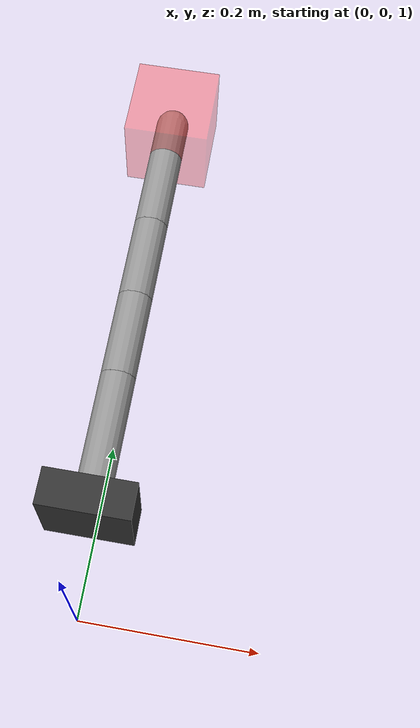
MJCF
<mujoco model="6DOF_arm">
    <compiler angle="radian"/>

    <default>
        <joint damping="0.1" armature="0.01"/>
        <geom type="capsule" size="0.02 0.2" rgba="0.6 0.6 0.6 1"/>
        <site size="0.03" rgba="0 1 0 1"/>
    </default>

    <worldbody>
        <!-- Base -->
        <body name="base" pos="0.0 0.1 1.1" euler="-1.57 0.0 0.0">
            <geom type="box" size="0.05 0.05 0.02" rgba="0.2 0.2 0.2 1"/>

            <!-- Shoulder yaw -->
            <body name="shoulder_yaw_body" pos="0 0 0">
                <joint name="shoulder_yaw" type="hinge" axis="0 0 1"/>
                <geom type="sphere" size="0.02" rgba="0.8 0.2 0.2 1"/>

                <!-- Shoulder pitch -->
                <body name="shoulder_pitch_body" pos="0 0 0">
                    <joint name="shoulder_pitch" type="hinge" axis="0 1 0"/>
                    <geom type="sphere" size="0.02" rgba="0.8 0.2 0.2 1"/>

                    <!-- Shoulder roll -->
                    <body name="shoulder_roll_body" pos="0 0 0">
                        <joint name="shoulder_roll" type="hinge" axis="1 0 0"/>
                        <geom fromto="0 0 0 0 0 0.15"/>

                        <!-- Elbow pitch -->
                        <body name="elbow_pitch_body" pos="0 0 0.15">
                            <joint name="elbow_pitch" type="hinge" axis="0 1 0"/>
                            <geom fromto="0 0 0 0 0 0.1"/>

                            <!-- Wrist roll -->
                            <body name="wrist_roll_body" pos="0 0 0.1">
                                <joint name="wrist_roll" type="hinge" axis="0 0 1"/>
                                <geom fromto="0 0 0 0 0 0.1"/>

                                <!-- Wrist yaw -->
                                <body name="wrist_yaw_body" pos="0 0 0.1">
                                    <joint name="wrist_yaw" type="hinge" axis="0 1 0"/>
                                    <geom fromto="0 0 0 0 0 0.15"/>
                                    <body name="end_effector" pos="0 0 0.15">
                                        <site name="ee_site" pos="0 0 0.0" type="box" size="0.05 0.05 0.05" rgba="1 0 0 0.3"/>
                                    </body>
                                </body>
                            </body>
                        </body>
                    </body>
                </body>
            </body>
        </body>
    </worldbody>

    <actuator>
        <position name="shoulder_yaw_act" joint="shoulder_yaw"      kp="50" kv="3"/>
        <position name="shoulder_pitch_act" joint="shoulder_pitch"  kp="300" kv="10"/>
        <position name="shoulder_roll_act" joint="shoulder_roll"    kp="300" kv="10"/>
        <position name="elbow_pitch_act" joint="elbow_pitch"        kp="300" kv="10"/>
        <position name="wrist_roll_act" joint="wrist_roll"          kp="50" kv="3"/>
        <position name="wrist_yaw_act" joint="wrist_yaw"            kp="300" kv="10"/>
    </actuator>
</mujoco>
